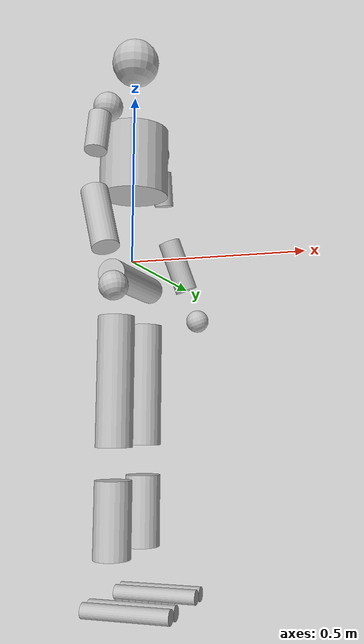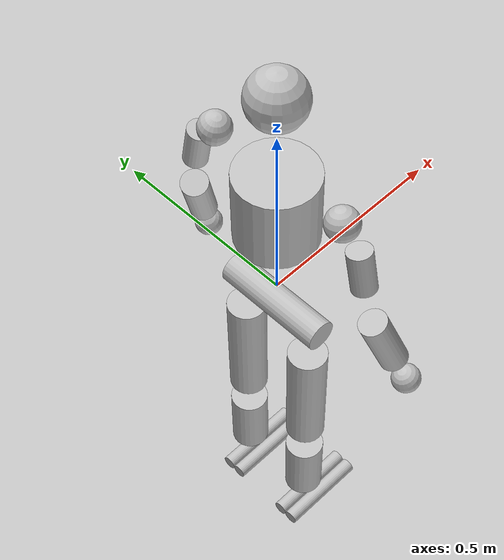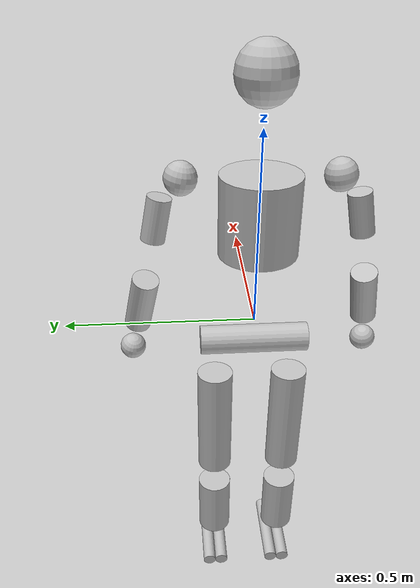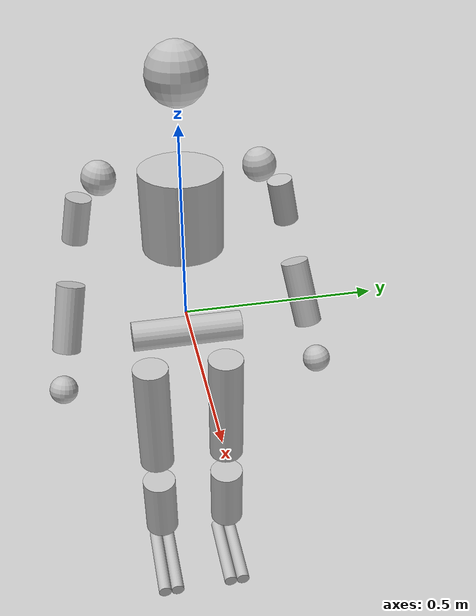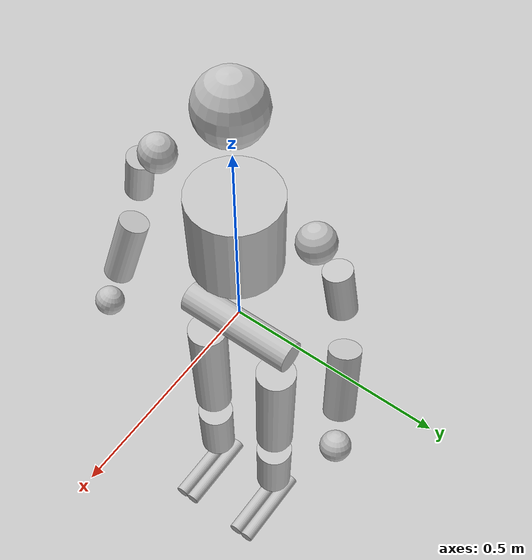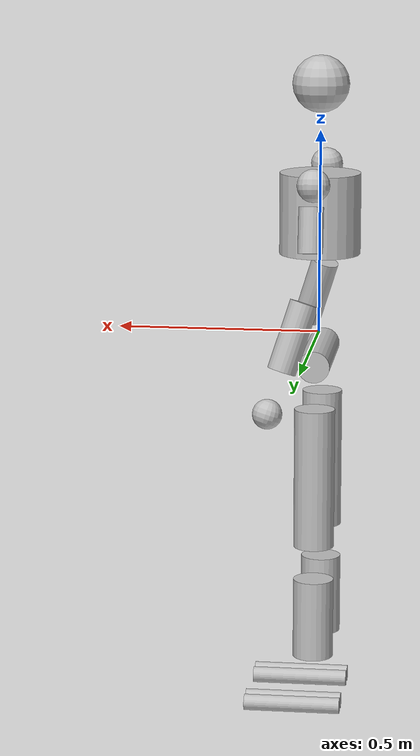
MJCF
<mujoco model="GR1T1">
  <compiler angle="radian" />

  <worldbody>
    <body name="base">
      <inertial pos="-0.05149 0.00010447 -0.04563" quat="0.332181 0.33258 -0.62398 0.624256" mass="5.84" diaginertia="0.0540795 0.0494995 0.012085" />
      <geom size="0.039 0.145" pos="0 0 -0.06" quat="0.707388 0.706825 0 0" type="cylinder" rgba="0.75294 0.75294 0.75294 1" />
      <body name="l_thigh_roll" pos="-0.047999 0.105 -0.057493">
        <inertial pos="0.04163 3.4568e-05 -0.0021382" quat="0.000472752 0.840032 -0.00395599 0.542522" mass="1.1437" diaginertia="0.00133196 0.0011576 0.00106463" />
        <joint name="l_hip_roll" pos="0 0 0" axis="1 0 0" range="-0.09 0.79" actuatorfrcrange="-48 48" />
        <body name="l_thigh_yaw" pos="0.048 0 -0.030499">
          <inertial pos="0.00018336 0.046462 -0.10389" quat="0.699766 -0.0025651 -0.0829785 0.709532" mass="3.9889" diaginertia="0.0176163 0.0117979 0.00975089" />
          <joint name="l_hip_yaw" pos="0 0 0" axis="0 0 1" range="-0.7 0.7" actuatorfrcrange="-66 66" />
          <body name="l_thigh_pitch" pos="0 0 -0.11">
            <inertial pos="0.0029134 -0.021367 -0.091783" quat="0.70038 0.0186274 -0.0443835 0.712145" mass="6.4684" diaginertia="0.0855072 0.0770364 0.0161517" />
            <joint name="l_hip_pitch" pos="0 0 0" axis="0 1 0" range="-1.75 0.7" actuatorfrcrange="-160 160" />
            <geom size="0.05 0.175" pos="0 0 -0.15" type="cylinder" rgba="0.75294 0.75294 0.75294 1" />
            <body name="l_shank_pitch" pos="0 2.4606e-05 -0.36">
              <inertial pos="0.0024312 -2.9945e-05 -0.11554" quat="0.690518 0.00276312 -0.00138824 0.723309" mass="2.1895" diaginertia="0.0169612 0.0168147 0.00115789" />
              <joint name="l_knee_pitch" pos="0 0 0" axis="0 1 0" range="-0.09 1.92" actuatorfrcrange="-160 160" />
              <geom size="0.05 0.1" pos="0 0 -0.15" type="cylinder" rgba="0.75294 0.75294 0.75294 1" />
              <body name="l_foot_pitch" pos="0 2.3239e-05 -0.34">
                <inertial pos="1.757e-11 4.403e-11 0" quat="0.499981 0.500019 -0.500019 0.499981" mass="0.079922" diaginertia="1.34077e-05 1.05687e-05 8.2173e-06" />
                <joint name="l_ankle_pitch" pos="0 0 0" axis="0 1 0" range="-1.05 0.52" actuatorfrcrange="-15 15" />
                <body name="l_foot_roll">
                  <inertial pos="0.039202 0.000276 -0.037385" quat="-7.81291e-05 0.724758 -0.000184281 0.689003" mass="0.58054" diaginertia="0.00278817 0.0025441 0.000372568" />
                  <joint name="l_ankle_roll" pos="0 0 0" axis="1 0 0" range="-0.44 0.44" actuatorfrcrange="-30 30" />
                  <geom name="toe1_lift" size="0.02 0.12" pos="0.05 0.02 -0.035" quat="0.707105 0 0.707108 0" type="cylinder" rgba="0.75294 0.75294 0.75294 1" />
                  <geom name="toe2_lift" size="0.02 0.12" pos="0.05 -0.02 -0.035" quat="0.707105 0 0.707108 0" type="cylinder" rgba="0.75294 0.75294 0.75294 1" />
                </body>
              </body>
            </body>
          </body>
        </body>
      </body>
      <body name="r_thigh_roll" pos="-0.047999 -0.105 -0.057508">
        <inertial pos="0.04163 3.4568e-05 -0.0021382" quat="0.000472752 0.840032 -0.00395599 0.542522" mass="1.1437" diaginertia="0.00133196 0.0011576 0.00106463" />
        <joint name="r_hip_roll" pos="0 0 0" axis="1 0 0" range="-0.79 0.09" actuatorfrcrange="-48 48" />
        <body name="r_thigh_yaw" pos="0.048 0 -0.030499">
          <inertial pos="-0.0015975 -0.046448 -0.1039" quat="0.708874 -0.0733062 0.0068972 0.701481" mass="3.9889" diaginertia="0.0176052 0.0117872 0.00975256" />
          <joint name="r_hip_yaw" pos="0 0 0" axis="0 0 1" range="-0.7 0.7" actuatorfrcrange="-66 66" />
          <body name="r_thigh_pitch" pos="0 0 -0.11">
            <inertial pos="0.0029062 0.02138 -0.092878" quat="0.712288 -0.0441591 0.0181341 0.700262" mass="6.4684" diaginertia="0.0847473 0.0762648 0.0161971" />
            <joint name="r_hip_pitch" pos="0 0 0" axis="0 1 0" range="-1.75 0.7" actuatorfrcrange="-160 160" />
            <geom size="0.05 0.175" pos="0 0 -0.15" type="cylinder" rgba="0.75294 0.75294 0.75294 1" />
            <body name="r_shank_pitch" pos="0 2.4606e-05 -0.36">
              <inertial pos="0.0023666 4.5619e-05 -0.11553" quat="0.71961 -0.00122697 0.0026293 0.694373" mass="2.1895" diaginertia="0.0169548 0.0168088 0.00115769" />
              <joint name="r_knee_pitch" pos="0 0 0" axis="0 1 0" range="-0.09 1.92" actuatorfrcrange="-160 160" />
              <geom size="0.05 0.1" pos="0 0 -0.15" type="cylinder" rgba="0.75294 0.75294 0.75294 1" />
              <body name="r_foot_pitch" pos="0 2.3239e-05 -0.34">
                <inertial pos="1.7577e-11 4.4017e-11 0" quat="0.499981 0.500019 -0.500019 0.499981" mass="0.079922" diaginertia="1.34077e-05 1.05687e-05 8.2173e-06" />
                <joint name="r_ankle_pitch" pos="0 0 0" axis="0 1 0" range="-1.05 0.52" actuatorfrcrange="-15 15" />
                <body name="r_foot_roll">
                  <inertial pos="0.039207 -0.00023358 -0.037385" quat="0.000106371 0.724759 0.000312934 0.689002" mass="0.58054" diaginertia="0.00278803 0.00254398 0.000372524" />
                  <joint name="r_ankle_roll" pos="0 0 0" axis="1 0 0" range="-0.44 0.44" actuatorfrcrange="-30 30" />
                  <geom name="toe1_right" size="0.02 0.12" pos="0.05 0.02 -0.035" quat="0.707105 0 0.707108 0" type="cylinder" rgba="0.75294 0.75294 0.75294 1" />
                  <geom name="toe2_right" size="0.02 0.12" pos="0.05 -0.02 -0.035" quat="0.707105 0 0.707108 0" type="cylinder" rgba="0.75294 0.75294 0.75294 1" />
                </body>
              </body>
            </body>
          </body>
        </body>
      </body>
      <body name="link_waist_yaw" pos="0 0 0.0065">
        <inertial pos="-0.010388 -0.0016964 0.022471" quat="0.509165 0.498687 -0.455299 0.533634" mass="0.3789" diaginertia="0.000715358 0.000559842 0.000410457" />
        <body name="link_waist_pitch" pos="0 0 0.055">
          <inertial pos="0.0022816 -0.0022836 0.042537" quat="0.988982 -0.0285964 0.020736 -0.143762" mass="2.7504" diaginertia="0.0074853 0.00748364 0.00241295" />
          <body name="link_waist_roll" pos="0 0 0.085">
            <inertial pos="-0.0092401 -1.0366e-05 0.16621" quat="0.999681 8.2842e-05 0.0252654 0.000250845" mass="7.8178" diaginertia="0.0661785 0.0485869 0.035321" />
            <geom size="0.1 0.1" pos="0 0 0.15" type="cylinder" rgba="0.75294 0.75294 0.75294 1" />
            <body name="link_torso" pos="0 -1.0814e-05 0.15821">
              <body name="link_head_yaw" pos="0 -1.2735e-05 0.18632">
                <inertial pos="-0.00051992 -1.5565e-05 0.053619" quat="0.705865 0.0334902 0.0330034 0.706784" mass="0.32512" diaginertia="0.00032112 0.000281673 0.000133946" />
                <body name="link_head_roll" pos="0 0 0.1225">
                  <inertial pos="-0.00016769 -0.0025401 -0.0020985" quat="0.62653 0.300327 -0.300213 0.653557" mass="0.1879" diaginertia="5.65497e-05 5.561e-05 4.44875e-05" />
                  <body name="link_head_pitch">
                    <inertial pos="0.018469 0.00019719 -0.011583" quat="-0.00559303 0.89538 0.00785001 0.445198" mass="0.42851" diaginertia="0.00183373 0.00150536 0.00118851" />
                    <geom size="0.07" rgba="0.75294 0.75294 0.75294 1" />
                  </body>
                </body>
              </body>
              <body name="l_upper_arm_pitch" pos="0 0.12662 0.059054" quat="0.976289 0.216473 0 0">
                <inertial pos="0.0051573 0.058834 0.00012296" quat="0.719953 0.692802 -0.0272735 -0.0308183" mass="0.77739" diaginertia="0.000767553 0.000671589 0.000483428" />
                <body name="l_upper_arm_roll" pos="0 0.067 0" quat="0.993023 -0.117925 0 0">
                  <inertial pos="0.026005 0.02383 -0.027208" quat="0.906709 0.298574 0.22873 -0.190826" mass="0.084111" diaginertia="9.66715e-05 8.99185e-05 2.5473e-05" />
                  <geom size="0.04" rgba="0.75294 0.75294 0.75294 1" />
                  <body name="l_upper_arm_yaw" pos="0 0.040004 -0.057502">
                    <inertial pos="-4.1244e-05 0.0013503 -0.10101" quat="0.999955 0.00909883 -0.000456609 0.00253247" mass="0.78993" diaginertia="0.00541918 0.00539321 0.000425104" />
                    <geom size="0.03 0.055" pos="0 0 -0.05" type="cylinder" rgba="0.75294 0.75294 0.75294 1" />
                    <body name="l_lower_arm_pitch" pos="0 1.2887e-05 -0.18855" quat="0.988771 0 -0.149438 0">
                      <inertial pos="2.6052e-07 0.019694 -0.02109" quat="0.675255 -0.209847 0.209838 0.675251" mass="0.055396" diaginertia="2.92256e-05 2.63267e-05 1.3293e-05" />
                      <body name="l_hand_yaw" pos="0 0 -0.040504">
                        <inertial pos="-2.4228e-05 0.0014878 -0.07325" quat="0.709543 0.00325243 -0.00668109 0.704623" mass="0.99113" diaginertia="0.00270903 0.00263845 0.000544904" />
                        <geom size="0.035 0.085" pos="0 0 -0.08" type="cylinder" rgba="0.75294 0.75294 0.75294 1" />
                        <body name="l_hand_roll" pos="0 1.3775e-05 -0.20155">
                          <inertial pos="-1.5483e-08 -0.00044846 -1.9394e-08" quat="0 0.707107 0 0.707107" mass="0.0054473" diaginertia="3.604e-07 3.553e-07 7.34e-08" />
                          <body name="l_hand_pitch">
                            <inertial pos="0.0060731 -0.0018792 -0.084578" quat="0.811838 0.0572522 0.0169312 0.580823" mass="0.53221" diaginertia="0.0014226 0.000988524 0.000569029" />
                            <geom size="0.036" pos="0 0 -0.07" rgba="0.75294 0.75294 0.75294 1" />
                          </body>
                        </body>
                      </body>
                    </body>
                  </body>
                </body>
              </body>
              <body name="r_upper_arm_pitch" pos="0 -0.12663 0.059037" quat="0.976303 -0.216409 0 0">
                <inertial pos="0.0051574 -0.058792 0.00012294" quat="0.68842 0.724215 0.0306114 0.0255508" mass="0.77739" diaginertia="0.000766885 0.000671257 0.000483354" />
                <body name="r_upper_arm_roll" pos="0 -0.067 0" quat="0.99303 0.11786 0 0">
                  <inertial pos="0.026006 -0.023826 -0.027211" quat="0.906733 -0.298528 0.228699 0.190823" mass="0.084111" diaginertia="9.66585e-05 8.99068e-05 2.54689e-05" />
                  <geom size="0.04" rgba="0.75294 0.75294 0.75294 1" />
                  <body name="r_upper_arm_yaw" pos="0 -0.039996 -0.057473">
                    <inertial pos="0.00017083 -0.0012415 -0.10098" quat="0.9996 -0.00948413 -0.000274015 -0.0266375" mass="0.78993" diaginertia="0.00541654 0.00538918 0.000425797" />
                    <geom size="0.03 0.055" pos="0 0 -0.05" type="cylinder" rgba="0.75294 0.75294 0.75294 1" />
                    <body name="r_lower_arm_pitch" pos="0 1.2886e-05 -0.18853" quat="0.988771 0 -0.149438 0">
                      <inertial pos="2.5454e-07 -0.019691 -0.021093" quat="0.675237 0.209883 -0.209892 0.675241" mass="0.055396" diaginertia="2.92255e-05 2.63267e-05 1.32931e-05" />
                      <body name="r_hand_yaw" pos="0 0 -0.0405">
                        <inertial pos="9.608e-05 -0.0015582 -0.07318" quat="0.711692 -0.00210257 0.0062881 0.70246" mass="0.99113" diaginertia="0.00270741 0.00263357 0.000544534" />
                        <geom size="0.035 0.085" pos="0 0 -0.08" type="cylinder" rgba="0.75294 0.75294 0.75294 1" />
                        <body name="r_hand_roll" pos="0 1.3775e-05 -0.20153">
                          <inertial pos="1.5545e-08 0.00044846 4.1938e-08" quat="0 0.707107 0 0.707107" mass="0.0054473" diaginertia="3.604e-07 3.553e-07 7.34e-08" />
                          <body name="r_hand_pitch">
                            <inertial pos="0.006073 0.0018908 -0.084578" quat="0.580805 0.0169728 0.0571907 0.811854" mass="0.53221" diaginertia="0.00142258 0.000988529 0.000569034" />
                            <geom size="0.036" pos="0 0 -0.07" rgba="0.75294 0.75294 0.75294 1" />
                          </body>
                        </body>
                      </body>
                    </body>
                  </body>
                </body>
              </body>
            </body>
          </body>
        </body>
      </body>
      <body name="link_imu" pos="-0.0648 0 -0.1015" />
    </body>
  </worldbody>
</mujoco>
